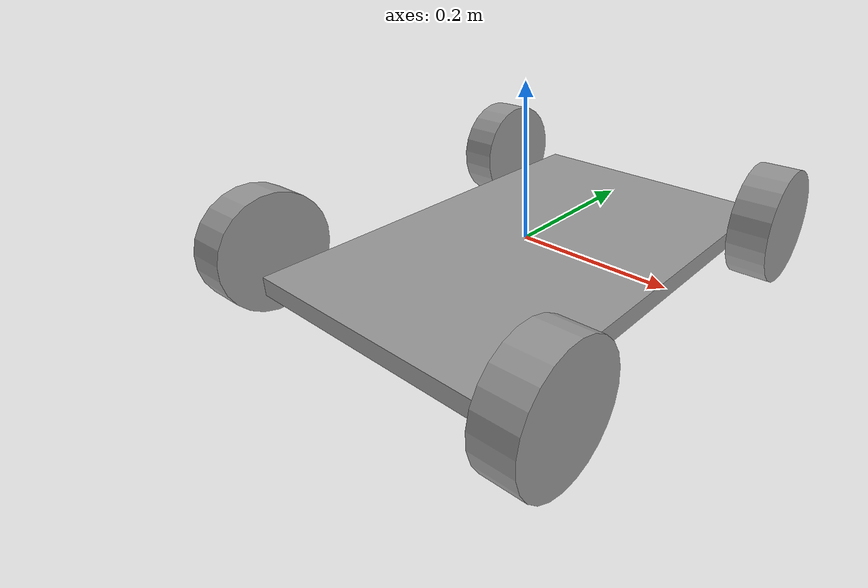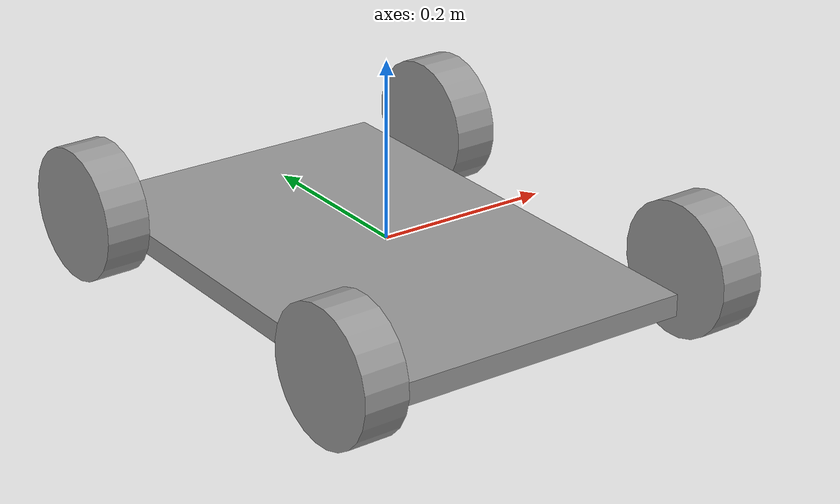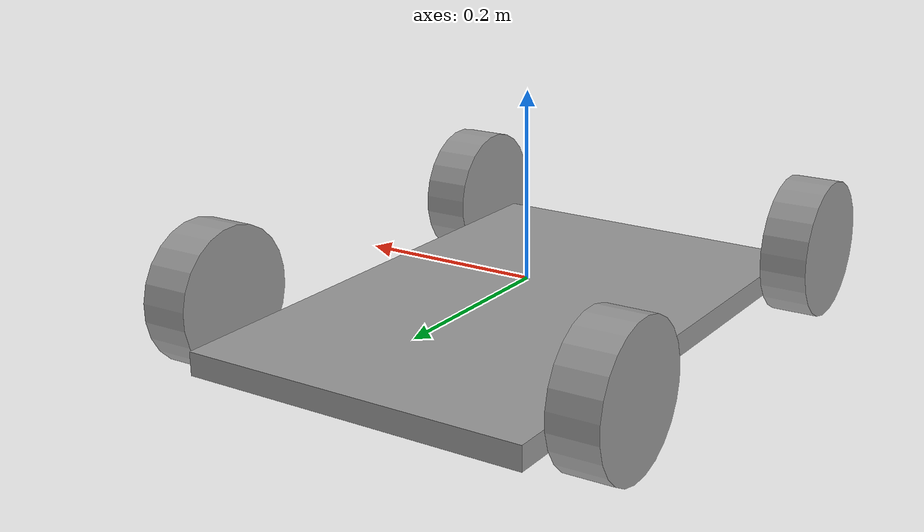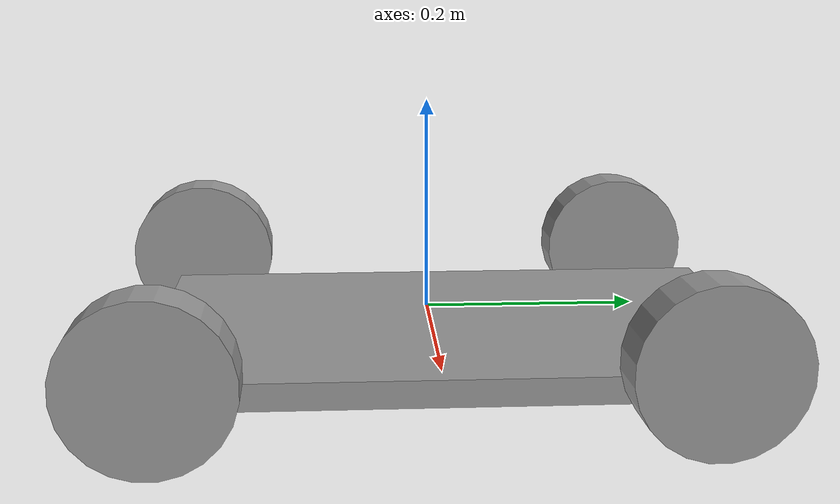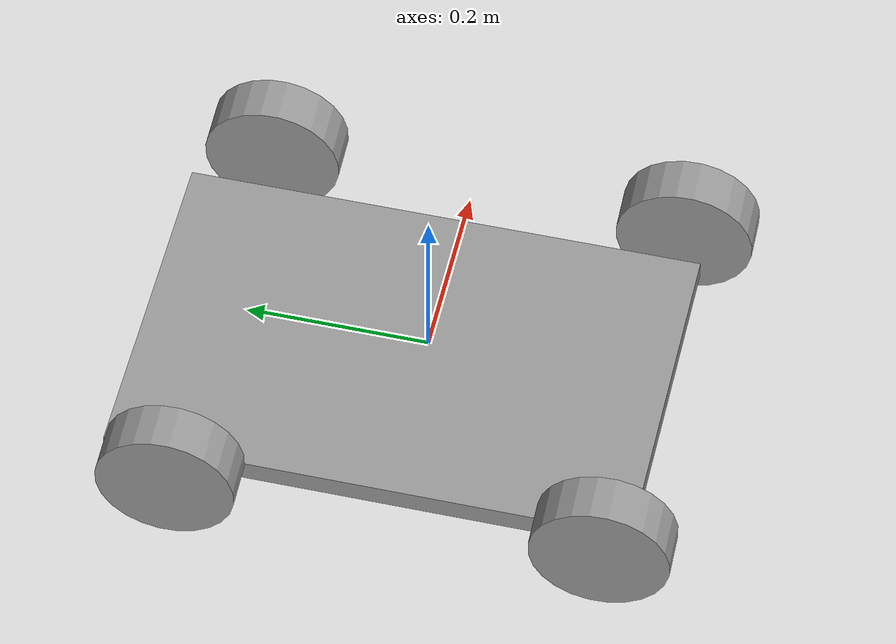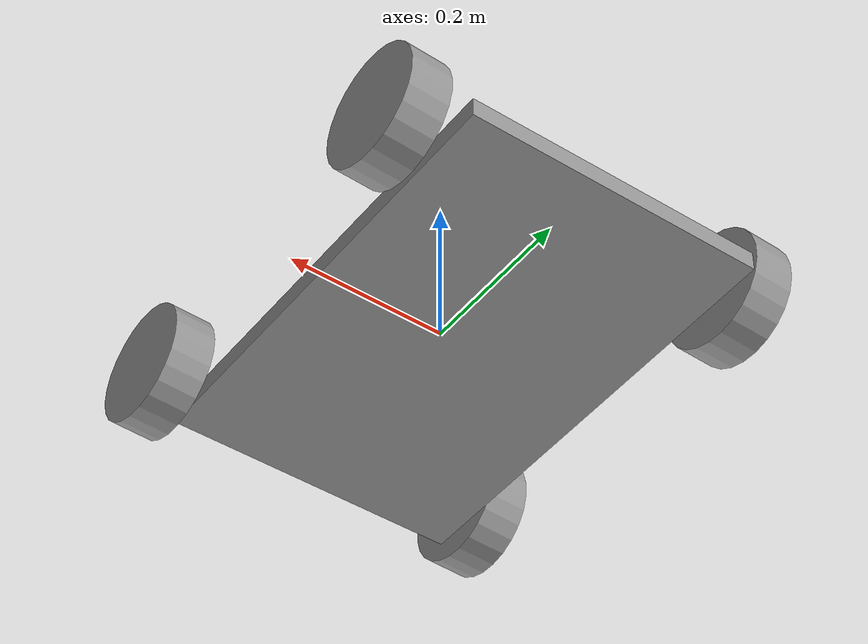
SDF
<?xml version='1.0'?>
<sdf version='1.6'>
  <model name='robot1'>
    <link name='link_0'>
      <pose frame=''>-0.003028 0.024564 -0.026639 0 -0 0</pose>
      <inertial>
        <mass>0.00520532</mass>
        <inertia>
          <ixx>0.00014043</ixx>
          <ixy>0</ixy>
          <ixz>0</ixz>
          <iyy>6.013e-05</iyy>
          <iyz>0</iyz>
          <izz>0.00020003</izz>
        </inertia>
        <pose frame=''>0 0 0 0 -0 0</pose>
      </inertial>
      <gravity>1</gravity>
      <self_collide>0</self_collide>
      <kinematic>0</kinematic>
      <visual name='visual'>
        <pose frame=''>0 0 0 0 -0 0</pose>
        <geometry>
          <box>
            <size>0.371482 0.568477 0.024653</size>
          </box>
        </geometry>
        <material>
          <lighting>1</lighting>
          <script>
            <uri>file://media/materials/scripts/gazebo.material</uri>
            <name>Gazebo/Grey</name>
          </script>
          <ambient>0.3 0.3 0.3 1</ambient>
          <diffuse>0.7 0.7 0.7 1</diffuse>
          <specular>0.01 0.01 0.01 1</specular>
          <emissive>0 0 0 1</emissive>
          <shader type='vertex'>
            <normal_map>__default__</normal_map>
          </shader>
        </material>
        <transparency>0</transparency>
        <cast_shadows>1</cast_shadows>
      </visual>
      <collision name='collision'>
        <laser_retro>0</laser_retro>
        <max_contacts>10</max_contacts>
        <pose frame=''>0 0 0 0 -0 0</pose>
        <geometry>
          <box>
            <size>0.371482 0.568477 0.024653</size>
          </box>
        </geometry>
        <surface>
          <friction>
            <ode>
              <mu>1</mu>
              <mu2>1</mu2>
              <fdir1>0 0 0</fdir1>
              <slip1>0</slip1>
              <slip2>0</slip2>
            </ode>
            <torsional>
              <coefficient>1</coefficient>
              <patch_radius>0</patch_radius>
              <surface_radius>0</surface_radius>
              <use_patch_radius>1</use_patch_radius>
              <ode>
                <slip>0</slip>
              </ode>
            </torsional>
          </friction>
          <bounce>
            <restitution_coefficient>0</restitution_coefficient>
            <threshold>1e+06</threshold>
          </bounce>
          <contact>
            <collide_without_contact>0</collide_without_contact>
            <collide_without_contact_bitmask>1</collide_without_contact_bitmask>
            <collide_bitmask>1</collide_bitmask>
            <ode>
              <soft_cfm>0</soft_cfm>
              <soft_erp>0.2</soft_erp>
              <kp>1e+13</kp>
              <kd>1</kd>
              <max_vel>0.01</max_vel>
              <min_depth>0</min_depth>
            </ode>
            <bullet>
              <split_impulse>1</split_impulse>
              <split_impulse_penetration_threshold>-0.01</split_impulse_penetration_threshold>
              <soft_cfm>0</soft_cfm>
              <soft_erp>0.2</soft_erp>
              <kp>1e+13</kp>
              <kd>1</kd>
            </bullet>
          </contact>
        </surface>
      </collision>
    </link>
    <link name='link_1'>
      <pose frame=''>0.226818 0.223167 0.008335 1.57352 0.112024 -1.5464</pose>
      <inertial>
        <mass>0.00113731</mass>
        <inertia>
          <ixx>1.84e-06</ixx>
          <ixy>0</ixy>
          <ixz>0</ixz>
          <iyy>1.84e-06</iyy>
          <iyz>0</iyz>
          <izz>3.18e-06</izz>
        </inertia>
        <pose frame=''>0 0 0 0 -0 0</pose>
      </inertial>
      <gravity>1</gravity>
      <self_collide>0</self_collide>
      <kinematic>0</kinematic>
      <visual name='visual'>
        <pose frame=''>0 0 0 0 -0 0</pose>
        <geometry>
          <cylinder>
            <radius>0.0747958</radius>
            <length>0.0508477</length>
          </cylinder>
        </geometry>
        <material>
          <lighting>1</lighting>
          <script>
            <uri>file://media/materials/scripts/gazebo.material</uri>
            <name>Gazebo/Grey</name>
          </script>
          <ambient>0.3 0.3 0.3 1</ambient>
          <diffuse>0.7 0.7 0.7 1</diffuse>
          <specular>0.01 0.01 0.01 1</specular>
          <emissive>0 0 0 1</emissive>
          <shader type='vertex'>
            <normal_map>__default__</normal_map>
          </shader>
        </material>
        <transparency>0</transparency>
        <cast_shadows>1</cast_shadows>
      </visual>
      <collision name='collision'>
        <laser_retro>0</laser_retro>
        <max_contacts>10</max_contacts>
        <pose frame=''>0 0 0 0 -0 0</pose>
        <geometry>
          <cylinder>
            <radius>0.074796</radius>
            <length>0.050848</length>
          </cylinder>
        </geometry>
        <surface>
          <friction>
            <ode>
              <mu>1</mu>
              <mu2>1</mu2>
              <fdir1>0 0 0</fdir1>
              <slip1>0</slip1>
              <slip2>0</slip2>
            </ode>
            <torsional>
              <coefficient>1</coefficient>
              <patch_radius>0</patch_radius>
              <surface_radius>0</surface_radius>
              <use_patch_radius>1</use_patch_radius>
              <ode>
                <slip>0</slip>
              </ode>
            </torsional>
          </friction>
          <bounce>
            <restitution_coefficient>0</restitution_coefficient>
            <threshold>1e+06</threshold>
          </bounce>
          <contact>
            <collide_without_contact>0</collide_without_contact>
            <collide_without_contact_bitmask>1</collide_without_contact_bitmask>
            <collide_bitmask>1</collide_bitmask>
            <ode>
              <soft_cfm>0</soft_cfm>
              <soft_erp>0.2</soft_erp>
              <kp>1e+13</kp>
              <kd>1</kd>
              <max_vel>0.01</max_vel>
              <min_depth>0</min_depth>
            </ode>
            <bullet>
              <split_impulse>1</split_impulse>
              <split_impulse_penetration_threshold>-0.01</split_impulse_penetration_threshold>
              <soft_cfm>0</soft_cfm>
              <soft_erp>0.2</soft_erp>
              <kp>1e+13</kp>
              <kd>1</kd>
            </bullet>
          </contact>
        </surface>
      </collision>
    </link>
    <link name='link_1_clone'>
      <pose frame=''>0.221399 -0.237419 0.001708 1.57352 0.112024 -1.5464</pose>
      <inertial>
        <mass>0.00113731</mass>
        <inertia>
          <ixx>1.84e-06</ixx>
          <ixy>0</ixy>
          <ixz>0</ixz>
          <iyy>1.84e-06</iyy>
          <iyz>0</iyz>
          <izz>3.18e-06</izz>
        </inertia>
        <pose frame=''>0 0 0 0 -0 0</pose>
      </inertial>
      <self_collide>0</self_collide>
      <kinematic>0</kinematic>
      <visual name='visual'>
        <pose frame=''>0 0 0 0 -0 0</pose>
        <geometry>
          <cylinder>
            <radius>0.0747958</radius>
            <length>0.0508477</length>
          </cylinder>
        </geometry>
        <material>
          <lighting>1</lighting>
          <script>
            <uri>file://media/materials/scripts/gazebo.material</uri>
            <name>Gazebo/Grey</name>
          </script>
          <ambient>0.3 0.3 0.3 1</ambient>
          <diffuse>0.7 0.7 0.7 1</diffuse>
          <specular>0.01 0.01 0.01 1</specular>
          <emissive>0 0 0 1</emissive>
          <shader type='vertex'>
            <normal_map>__default__</normal_map>
          </shader>
        </material>
        <transparency>0</transparency>
        <cast_shadows>1</cast_shadows>
      </visual>
      <collision name='collision'>
        <laser_retro>0</laser_retro>
        <max_contacts>10</max_contacts>
        <pose frame=''>0 0 0 0 -0 0</pose>
        <geometry>
          <cylinder>
            <radius>0.074796</radius>
            <length>0.050848</length>
          </cylinder>
        </geometry>
        <surface>
          <friction>
            <ode>
              <mu>1</mu>
              <mu2>1</mu2>
              <fdir1>0 0 0</fdir1>
              <slip1>0</slip1>
              <slip2>0</slip2>
            </ode>
            <torsional>
              <coefficient>1</coefficient>
              <patch_radius>0</patch_radius>
              <surface_radius>0</surface_radius>
              <use_patch_radius>1</use_patch_radius>
              <ode>
                <slip>0</slip>
              </ode>
            </torsional>
          </friction>
          <bounce>
            <restitution_coefficient>0</restitution_coefficient>
            <threshold>1e+06</threshold>
          </bounce>
          <contact>
            <collide_without_contact>0</collide_without_contact>
            <collide_without_contact_bitmask>1</collide_without_contact_bitmask>
            <collide_bitmask>1</collide_bitmask>
            <ode>
              <soft_cfm>0</soft_cfm>
              <soft_erp>0.2</soft_erp>
              <kp>1e+13</kp>
              <kd>1</kd>
              <max_vel>0.01</max_vel>
              <min_depth>0</min_depth>
            </ode>
            <bullet>
              <split_impulse>1</split_impulse>
              <split_impulse_penetration_threshold>-0.01</split_impulse_penetration_threshold>
              <soft_cfm>0</soft_cfm>
              <soft_erp>0.2</soft_erp>
              <kp>1e+13</kp>
              <kd>1</kd>
            </bullet>
          </contact>
        </surface>
      </collision>
    </link>
    <link name='link_1_clone_0'>
      <pose frame=''>-0.228417 0.225222 0.008301 1.57352 0.112024 -1.5464</pose>
      <inertial>
        <mass>0.00113731</mass>
        <inertia>
          <ixx>1.84e-06</ixx>
          <ixy>0</ixy>
          <ixz>0</ixz>
          <iyy>1.84e-06</iyy>
          <iyz>0</iyz>
          <izz>3.18e-06</izz>
        </inertia>
        <pose frame=''>0 0 0 0 -0 0</pose>
      </inertial>
      <self_collide>0</self_collide>
      <kinematic>0</kinematic>
      <visual name='visual'>
        <pose frame=''>0 0 0 0 -0 0</pose>
        <geometry>
          <cylinder>
            <radius>0.0747958</radius>
            <length>0.0508477</length>
          </cylinder>
        </geometry>
        <material>
          <lighting>1</lighting>
          <script>
            <uri>file://media/materials/scripts/gazebo.material</uri>
            <name>Gazebo/Grey</name>
          </script>
          <ambient>0.3 0.3 0.3 1</ambient>
          <diffuse>0.7 0.7 0.7 1</diffuse>
          <specular>0.01 0.01 0.01 1</specular>
          <emissive>0 0 0 1</emissive>
          <shader type='vertex'>
            <normal_map>__default__</normal_map>
          </shader>
        </material>
        <transparency>0</transparency>
        <cast_shadows>1</cast_shadows>
      </visual>
      <collision name='collision'>
        <laser_retro>0</laser_retro>
        <max_contacts>10</max_contacts>
        <pose frame=''>0 0 0 0 -0 0</pose>
        <geometry>
          <cylinder>
            <radius>0.074796</radius>
            <length>0.050848</length>
          </cylinder>
        </geometry>
        <surface>
          <friction>
            <ode>
              <mu>1</mu>
              <mu2>1</mu2>
              <fdir1>0 0 0</fdir1>
              <slip1>0</slip1>
              <slip2>0</slip2>
            </ode>
            <torsional>
              <coefficient>1</coefficient>
              <patch_radius>0</patch_radius>
              <surface_radius>0</surface_radius>
              <use_patch_radius>1</use_patch_radius>
              <ode>
                <slip>0</slip>
              </ode>
            </torsional>
          </friction>
          <bounce>
            <restitution_coefficient>0</restitution_coefficient>
            <threshold>1e+06</threshold>
          </bounce>
          <contact>
            <collide_without_contact>0</collide_without_contact>
            <collide_without_contact_bitmask>1</collide_without_contact_bitmask>
            <collide_bitmask>1</collide_bitmask>
            <ode>
              <soft_cfm>0</soft_cfm>
              <soft_erp>0.2</soft_erp>
              <kp>1e+13</kp>
              <kd>1</kd>
              <max_vel>0.01</max_vel>
              <min_depth>0</min_depth>
            </ode>
            <bullet>
              <split_impulse>1</split_impulse>
              <split_impulse_penetration_threshold>-0.01</split_impulse_penetration_threshold>
              <soft_cfm>0</soft_cfm>
              <soft_erp>0.2</soft_erp>
              <kp>1e+13</kp>
              <kd>1</kd>
            </bullet>
          </contact>
        </surface>
      </collision>
    </link>
    <link name='link_1_clone_0_clone'>
      <pose frame=''>-0.215998 -0.235521 0.008299 1.57352 0.112024 -1.5464</pose>
      <inertial>
        <mass>0.00113731</mass>
        <inertia>
          <ixx>1.84e-06</ixx>
          <ixy>0</ixy>
          <ixz>0</ixz>
          <iyy>1.84e-06</iyy>
          <iyz>0</iyz>
          <izz>3.18e-06</izz>
        </inertia>
        <pose frame=''>0 0 0 0 -0 0</pose>
      </inertial>
      <self_collide>0</self_collide>
      <kinematic>0</kinematic>
      <visual name='visual'>
        <pose frame=''>0 0 0 0 -0 0</pose>
        <geometry>
          <cylinder>
            <radius>0.0747958</radius>
            <length>0.0508477</length>
          </cylinder>
        </geometry>
        <material>
          <lighting>1</lighting>
          <script>
            <uri>file://media/materials/scripts/gazebo.material</uri>
            <name>Gazebo/Grey</name>
          </script>
          <ambient>0.3 0.3 0.3 1</ambient>
          <diffuse>0.7 0.7 0.7 1</diffuse>
          <specular>0.01 0.01 0.01 1</specular>
          <emissive>0 0 0 1</emissive>
          <shader type='vertex'>
            <normal_map>__default__</normal_map>
          </shader>
        </material>
        <transparency>0</transparency>
        <cast_shadows>1</cast_shadows>
      </visual>
      <collision name='collision'>
        <laser_retro>0</laser_retro>
        <max_contacts>10</max_contacts>
        <pose frame=''>0 0 0 0 -0 0</pose>
        <geometry>
          <cylinder>
            <radius>0.074796</radius>
            <length>0.050848</length>
          </cylinder>
        </geometry>
        <surface>
          <friction>
            <ode>
              <mu>1</mu>
              <mu2>1</mu2>
              <fdir1>0 0 0</fdir1>
              <slip1>0</slip1>
              <slip2>0</slip2>
            </ode>
            <torsional>
              <coefficient>1</coefficient>
              <patch_radius>0</patch_radius>
              <surface_radius>0</surface_radius>
              <use_patch_radius>1</use_patch_radius>
              <ode>
                <slip>0</slip>
              </ode>
            </torsional>
          </friction>
          <bounce>
            <restitution_coefficient>0</restitution_coefficient>
            <threshold>1e+06</threshold>
          </bounce>
          <contact>
            <collide_without_contact>0</collide_without_contact>
            <collide_without_contact_bitmask>1</collide_without_contact_bitmask>
            <collide_bitmask>1</collide_bitmask>
            <ode>
              <soft_cfm>0</soft_cfm>
              <soft_erp>0.2</soft_erp>
              <kp>1e+13</kp>
              <kd>1</kd>
              <max_vel>0.01</max_vel>
              <min_depth>0</min_depth>
            </ode>
            <bullet>
              <split_impulse>1</split_impulse>
              <split_impulse_penetration_threshold>-0.01</split_impulse_penetration_threshold>
              <soft_cfm>0</soft_cfm>
              <soft_erp>0.2</soft_erp>
              <kp>1e+13</kp>
              <kd>1</kd>
            </bullet>
          </contact>
        </surface>
      </collision>
    </link>
    <joint name='link_0_JOINT_0' type='revolute'>
      <parent>link_0</parent>
      <child>link_1</child>
      <pose frame=''>0 0 0 0 -0 0</pose>
      <axis>
        <xyz>0 0 1</xyz>
        <use_parent_model_frame>0</use_parent_model_frame>
        <limit>
          <lower>-1.79769e+308</lower>
          <upper>1.79769e+308</upper>
          <effort>-1</effort>
          <velocity>-1</velocity>
        </limit>
        <dynamics>
          <spring_reference>0</spring_reference>
          <spring_stiffness>0</spring_stiffness>
          <damping>0</damping>
        </dynamics>
      </axis>
      <physics>
        <ode>
          <limit>
            <cfm>0</cfm>
            <erp>0.2</erp>
          </limit>
          <suspension>
            <cfm>0</cfm>
            <erp>0.2</erp>
          </suspension>
        </ode>
      </physics>
    </joint>
    <joint name='link_0_JOINT_1' type='revolute'>
      <parent>link_0</parent>
      <child>link_1_clone</child>
      <pose frame=''>0 0 0 0 -0 0</pose>
      <axis>
        <xyz>0 0 1</xyz>
        <use_parent_model_frame>0</use_parent_model_frame>
        <limit>
          <lower>-1.79769e+308</lower>
          <upper>1.79769e+308</upper>
          <effort>-1</effort>
          <velocity>-1</velocity>
        </limit>
        <dynamics>
          <spring_reference>0</spring_reference>
          <spring_stiffness>0</spring_stiffness>
          <damping>0</damping>
        </dynamics>
      </axis>
      <physics>
        <ode>
          <limit>
            <cfm>0</cfm>
            <erp>0.2</erp>
          </limit>
          <suspension>
            <cfm>0</cfm>
            <erp>0.2</erp>
          </suspension>
        </ode>
      </physics>
    </joint>
    <joint name='link_0_JOINT_2' type='revolute'>
      <parent>link_0</parent>
      <child>link_1_clone_0</child>
      <pose frame=''>0 0 0 0 -0 0</pose>
      <axis>
        <xyz>0 0 1</xyz>
        <use_parent_model_frame>0</use_parent_model_frame>
        <limit>
          <lower>-1.79769e+308</lower>
          <upper>1.79769e+308</upper>
          <effort>-1</effort>
          <velocity>-1</velocity>
        </limit>
        <dynamics>
          <spring_reference>0</spring_reference>
          <spring_stiffness>0</spring_stiffness>
          <damping>0</damping>
        </dynamics>
      </axis>
      <physics>
        <ode>
          <limit>
            <cfm>0</cfm>
            <erp>0.2</erp>
          </limit>
          <suspension>
            <cfm>0</cfm>
            <erp>0.2</erp>
          </suspension>
        </ode>
      </physics>
    </joint>
    <joint name='link_0_JOINT_3' type='revolute'>
      <parent>link_0</parent>
      <child>link_1_clone_0_clone</child>
      <pose frame=''>0 0 0 0 -0 0</pose>
      <axis>
        <xyz>0 0 1</xyz>
        <use_parent_model_frame>0</use_parent_model_frame>
        <limit>
          <lower>-1.79769e+308</lower>
          <upper>1.79769e+308</upper>
          <effort>-1</effort>
          <velocity>-1</velocity>
        </limit>
        <dynamics>
          <spring_reference>0</spring_reference>
          <spring_stiffness>0</spring_stiffness>
          <damping>0</damping>
        </dynamics>
      </axis>
      <physics>
        <ode>
          <limit>
            <cfm>0</cfm>
            <erp>0.2</erp>
          </limit>
          <suspension>
            <cfm>0</cfm>
            <erp>0.2</erp>
          </suspension>
        </ode>
      </physics>
    </joint>
    <static>0</static>
    <allow_auto_disable>1</allow_auto_disable>
  </model>
</sdf>
